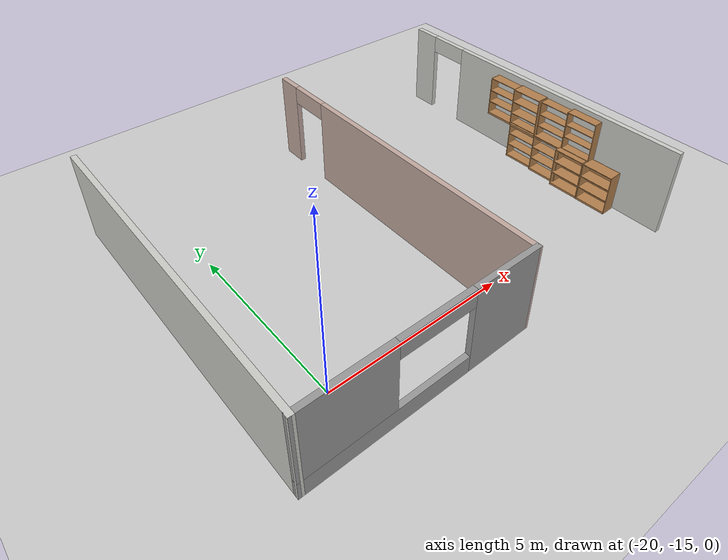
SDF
<sdf version="1.7">
 <world name="default">
  <model name="ground_plane">
   <static>1</static>
   <link name="link">
    <collision name="collision">
     <geometry><plane><normal>0 0 1</normal><size>100 100</size></plane></geometry>
     <surface><friction><ode><mu>100</mu><mu2>50</mu2></ode></friction></surface>
    </collision>
    <visual name="visual">
     <cast_shadows>0</cast_shadows>
     <geometry><plane><normal>0 0 1</normal><size>100 100</size></plane></geometry>
     <material>
      <script><uri>file://media/materials/scripts/gazebo.material</uri><name>Gazebo/Grey</name></script>
     </material>
    </visual>
   </link>
  </model>
  <model name="cps_lab_layout">
   <pose>-2.5615 -0.338224 0 0 -0 0</pose>
   <link name="Wall_85">
    <pose>-7.6062 -11.3801 0 0 -0 1.5708</pose>
    <visual name="Wall_85_Visual_0">
     <pose>-1.00212 0 1.25 0 -0 0</pose>
     <geometry><box><size>7.49576 0.15 2.5</size></box></geometry>
     <material>
      <script><uri>file://media/materials/scripts/gazebo.material</uri><name>Gazebo/CeilingTiled</name></script>
      <ambient>0.760784 0.662745 0.627451 1</ambient>
     </material>
     <meta><layer>0</layer></meta>
    </visual>
    <collision name="Wall_85_Collision_0">
     <geometry><box><size>7.49576 0.15 2.5</size></box></geometry>
     <pose>-1.00212 0 1.25 0 -0 0</pose>
    </collision>
    <visual name="Wall_85_Visual_1">
     <pose>4.34788 0 1.25 0 -0 0</pose>
     <geometry><box><size>0.804242 0.15 2.5</size></box></geometry>
     <material>
      <script><uri>file://media/materials/scripts/gazebo.material</uri><name>Gazebo/CeilingTiled</name></script>
      <ambient>0.760784 0.662745 0.627451 1</ambient>
     </material>
     <meta><layer>0</layer></meta>
    </visual>
    <collision name="Wall_85_Collision_1">
     <geometry><box><size>0.804242 0.15 2.5</size></box></geometry>
     <pose>4.34788 0 1.25 0 -0 0</pose>
    </collision>
    <visual name="Wall_85_Visual_2">
     <pose>3.34576 0 2.25 0 -0 0</pose>
     <geometry><box><size>1.2 0.15 0.5</size></box></geometry>
     <material>
      <script><uri>file://media/materials/scripts/gazebo.material</uri><name>Gazebo/CeilingTiled</name></script>
      <ambient>0.760784 0.662745 0.627451 1</ambient>
     </material>
     <meta><layer>0</layer></meta>
    </visual>
    <collision name="Wall_85_Collision_2">
     <geometry><box><size>1.2 0.15 0.5</size></box></geometry>
     <pose>3.34576 0 2.25 0 -0 0</pose>
    </collision>
   </link>
   <link name="Wall_87">
    <pose>-12.9562 -11.3801 0 0 -0 -1.5708</pose>
    <visual name="Wall_87_Visual_0">
     <pose>-4.40065 0 1.25 0 -0 0</pose>
     <geometry><box><size>0.698706 0.15 2.5</size></box></geometry>
     <material>
      <script><uri>file://media/materials/scripts/gazebo.material</uri><name>Gazebo/Grey</name></script>
      <ambient>0.760784 0.662745 0.627451 1</ambient>
     </material>
     <meta><layer>0</layer></meta>
    </visual>
    <collision name="Wall_87_Collision_0">
     <geometry><box><size>0.698706 0.15 2.5</size></box></geometry>
     <pose>-4.40065 0 1.25 0 -0 0</pose>
    </collision>
    <visual name="Wall_87_Visual_1">
     <pose>0.949353 0 1.25 0 -0 0</pose>
     <geometry><box><size>7.60129 0.15 2.5</size></box></geometry>
     <material>
      <script><uri>file://media/materials/scripts/gazebo.material</uri><name>Gazebo/Grey</name></script>
      <ambient>0.760784 0.662745 0.627451 1</ambient>
     </material>
     <meta><layer>0</layer></meta>
    </visual>
    <collision name="Wall_87_Collision_1">
     <geometry><box><size>7.60129 0.15 2.5</size></box></geometry>
     <pose>0.949353 0 1.25 0 -0 0</pose>
    </collision>
    <visual name="Wall_87_Visual_2">
     <pose>-3.45129 0 2.25 0 -0 0</pose>
     <geometry><box><size>1.2 0.15 0.5</size></box></geometry>
     <material>
      <script><uri>file://media/materials/scripts/gazebo.material</uri><name>Gazebo/Grey</name></script>
      <ambient>0.760784 0.662745 0.627451 1</ambient>
     </material>
     <meta><layer>0</layer></meta>
    </visual>
    <collision name="Wall_87_Collision_2">
     <geometry><box><size>1.2 0.15 0.5</size></box></geometry>
     <pose>-3.45129 0 2.25 0 -0 0</pose>
    </collision>
   </link>
   <link name="Wall_88">
    <pose>-16.0448 -16.0781 0 0 -0 -3.13416</pose>
    <visual name="Wall_88_Visual_0">
     <pose>-2.20299 0 1.25 0 -0 0</pose>
     <geometry><box><size>1.92131 0.15 2.5</size></box></geometry>
     <material>
      <script><uri>file://media/materials/scripts/gazebo.material</uri><name>Gazebo/Grey</name></script>
      <ambient>1 1 1 1</ambient>
     </material>
     <meta><layer>0</layer></meta>
    </visual>
    <collision name="Wall_88_Collision_0">
     <geometry><box><size>1.92131 0.15 2.5</size></box></geometry>
     <pose>-2.20299 0 1.25 0 -0 0</pose>
    </collision>
    <visual name="Wall_88_Visual_1">
     <pose>0.960656 0 0.25 0 -0 0</pose>
     <geometry><box><size>4.40597 0.15 0.5</size></box></geometry>
     <material>
      <script><uri>file://media/materials/scripts/gazebo.material</uri><name>Gazebo/Grey</name></script>
      <ambient>1 1 1 1</ambient>
     </material>
     <meta><layer>0</layer></meta>
    </visual>
    <collision name="Wall_88_Collision_1">
     <geometry><box><size>4.40597 0.15 0.5</size></box></geometry>
     <pose>0.960656 0 0.25 0 -0 0</pose>
    </collision>
    <visual name="Wall_88_Visual_2">
     <pose>1.96066 0 1.5 0 -0 0</pose>
     <geometry><box><size>2.40598 0.15 2</size></box></geometry>
     <material>
      <script><uri>file://media/materials/scripts/gazebo.material</uri><name>Gazebo/Grey</name></script>
      <ambient>1 1 1 1</ambient>
     </material>
     <meta><layer>0</layer></meta>
    </visual>
    <collision name="Wall_88_Collision_2">
     <geometry><box><size>2.40598 0.15 2</size></box></geometry>
     <pose>1.96066 0 1.5 0 -0 0</pose>
    </collision>
    <visual name="Wall_88_Visual_3">
     <pose>-0.242332 0 2.25 0 -0 0</pose>
     <geometry><box><size>2 0.15 0.5</size></box></geometry>
     <material>
      <script><uri>file://media/materials/scripts/gazebo.material</uri><name>Gazebo/Grey</name></script>
      <ambient>1 1 1 1</ambient>
     </material>
     <meta><layer>0</layer></meta>
    </visual>
    <collision name="Wall_88_Collision_3">
     <geometry><box><size>2 0.15 0.5</size></box></geometry>
     <pose>-0.242332 0 2.25 0 -0 0</pose>
    </collision>
   </link>
   <link name="Wall_89">
    <collision name="Wall_89_Collision">
     <geometry><box><size>9.5 0.15 2.5</size></box></geometry>
     <pose>0 0 1.25 0 -0 0</pose>
    </collision>
    <visual name="Wall_89_Visual">
     <pose>0 0 1.25 0 -0 0</pose>
     <geometry><box><size>9.5 0.15 2.5</size></box></geometry>
     <material>
      <script><uri>file://media/materials/scripts/gazebo.material</uri><name>Gazebo/CeilingTiled</name></script>
      <ambient>0.760784 0.662745 0.627451 1</ambient>
     </material>
     <meta><layer>0</layer></meta>
    </visual>
    <pose>-19.1333 -11.426 0 0 -0 1.5708</pose>
   </link>
   <static>1</static>
  </model>
  <model name="Bookshelf_0_clone_clone_1">
   <static>1</static>
   <link name="link">
    <inertial><mass>1</mass></inertial>
    <collision name="back">
     <pose>0 0.005 0.6 0 -0 0</pose>
     <geometry><box><size>0.9 0.01 1.2</size></box></geometry>
    </collision>
    <visual name="visual1">
     <pose>0 0.005 0.6 0 -0 0</pose>
     <geometry><box><size>0.9 0.01 1.2</size></box></geometry>
     <material>
      <diffuse>1 1 1 1</diffuse>
      <script><uri>file://media/materials/scripts/gazebo.material</uri><name>Gazebo/Wood</name></script>
      <pbr>
       <metal>
        <albedo_map>https://fuel.gazebosim.org/1.0/openrobotics/models/bookshelf/4/files/bookshelf_diffuse.jpg</albedo_map>
       </metal>
      </pbr>
     </material>
    </visual>
    <collision name="left_side">
     <pose>0.45 -0.195 0.6 0 -0 0</pose>
     <geometry><box><size>0.02 0.4 1.2</size></box></geometry>
    </collision>
    <visual name="visual2">
     <pose>0.45 -0.195 0.6 0 -0 0</pose>
     <geometry><box><size>0.02 0.4 1.2</size></box></geometry>
     <material>
      <diffuse>1 1 1 1</diffuse>
      <script><uri>file://media/materials/scripts/gazebo.material</uri><name>Gazebo/Wood</name></script>
      <pbr>
       <metal>
        <albedo_map>https://fuel.gazebosim.org/1.0/openrobotics/models/bookshelf/4/files/bookshelf_diffuse.jpg</albedo_map>
       </metal>
      </pbr>
     </material>
    </visual>
    <collision name="right_side">
     <pose>-0.45 -0.195 0.6 0 -0 0</pose>
     <geometry><box><size>0.02 0.4 1.2</size></box></geometry>
    </collision>
    <visual name="visual3">
     <pose>-0.45 -0.195 0.6 0 -0 0</pose>
     <geometry><box><size>0.02 0.4 1.2</size></box></geometry>
     <material>
      <diffuse>1 1 1 1</diffuse>
      <script><uri>file://media/materials/scripts/gazebo.material</uri><name>Gazebo/Wood</name></script>
      <pbr>
       <metal>
        <albedo_map>https://fuel.gazebosim.org/1.0/openrobotics/models/bookshelf/4/files/bookshelf_diffuse.jpg</albedo_map>
       </metal>
      </pbr>
     </material>
    </visual>
    <collision name="bottom">
     <pose>0 -0.195 0.03 0 -0 0</pose>
     <geometry><box><size>0.88 0.4 0.06</size></box></geometry>
    </collision>
    <visual name="visual4">
     <pose>0 -0.195 0.03 0 -0 0</pose>
     <geometry><box><size>0.88 0.4 0.06</size></box></geometry>
     <material>
      <diffuse>1 1 1 1</diffuse>
      <script><uri>file://media/materials/scripts/gazebo.material</uri><name>Gazebo/Wood</name></script>
      <pbr>
       <metal>
        <albedo_map>https://fuel.gazebosim.org/1.0/openrobotics/models/bookshelf/4/files/bookshelf_diffuse.jpg</albedo_map>
       </metal>
      </pbr>
     </material>
    </visual>
    <collision name="top">
     <pose>0 -0.195 1.19 0 -0 0</pose>
     <geometry><box><size>0.88 0.4 0.02</size></box></geometry>
    </collision>
    <visual name="visual5">
     <pose>0 -0.195 1.19 0 -0 0</pose>
     <geometry><box><size>0.88 0.4 0.02</size></box></geometry>
     <material>
      <diffuse>1 1 1 1</diffuse>
      <script><uri>file://media/materials/scripts/gazebo.material</uri><name>Gazebo/Wood</name></script>
      <pbr>
       <metal>
        <albedo_map>https://fuel.gazebosim.org/1.0/openrobotics/models/bookshelf/4/files/bookshelf_diffuse.jpg</albedo_map>
       </metal>
      </pbr>
     </material>
    </visual>
    <collision name="low_shelf">
     <pose>0 -0.195 0.43 0 -0 0</pose>
     <geometry><box><size>0.88 0.4 0.02</size></box></geometry>
    </collision>
    <visual name="visual6">
     <pose>0 -0.195 0.43 0 -0 0</pose>
     <geometry><box><size>0.88 0.4 0.02</size></box></geometry>
     <material>
      <diffuse>1 1 1 1</diffuse>
      <script><uri>file://media/materials/scripts/gazebo.material</uri><name>Gazebo/Wood</name></script>
      <pbr>
       <metal>
        <albedo_map>https://fuel.gazebosim.org/1.0/openrobotics/models/bookshelf/4/files/bookshelf_diffuse.jpg</albedo_map>
       </metal>
      </pbr>
     </material>
    </visual>
    <collision name="high_shelf">
     <pose>0 -0.195 0.8 0 -0 0</pose>
     <geometry><box><size>0.88 0.4 0.02</size></box></geometry>
    </collision>
    <visual name="visual7">
     <pose>0 -0.195 0.8 0 -0 0</pose>
     <geometry><box><size>0.88 0.4 0.02</size></box></geometry>
     <material>
      <diffuse>1 1 1 1</diffuse>
      <script><uri>file://media/materials/scripts/gazebo.material</uri><name>Gazebo/Wood</name></script>
      <pbr>
       <metal>
        <albedo_map>https://fuel.gazebosim.org/1.0/openrobotics/models/bookshelf/4/files/bookshelf_diffuse.jpg</albedo_map>
       </metal>
      </pbr>
     </material>
    </visual>
   </link>
   <pose>-10.1688 -11.9134 0 0 0 -1.55424</pose>
  </model>
  <model name="Bookshelf_0_clone_clone_2">
   <static>1</static>
   <link name="link">
    <inertial><mass>1</mass></inertial>
    <collision name="back">
     <pose>0 0.005 0.6 0 -0 0</pose>
     <geometry><box><size>0.9 0.01 1.2</size></box></geometry>
    </collision>
    <visual name="visual1">
     <pose>0 0.005 0.6 0 -0 0</pose>
     <geometry><box><size>0.9 0.01 1.2</size></box></geometry>
     <material>
      <diffuse>1 1 1 1</diffuse>
      <script><uri>file://media/materials/scripts/gazebo.material</uri><name>Gazebo/Wood</name></script>
      <pbr>
       <metal>
        <albedo_map>https://fuel.gazebosim.org/1.0/openrobotics/models/bookshelf/4/files/bookshelf_diffuse.jpg</albedo_map>
       </metal>
      </pbr>
     </material>
    </visual>
    <collision name="left_side">
     <pose>0.45 -0.195 0.6 0 -0 0</pose>
     <geometry><box><size>0.02 0.4 1.2</size></box></geometry>
    </collision>
    <visual name="visual2">
     <pose>0.45 -0.195 0.6 0 -0 0</pose>
     <geometry><box><size>0.02 0.4 1.2</size></box></geometry>
     <material>
      <diffuse>1 1 1 1</diffuse>
      <script><uri>file://media/materials/scripts/gazebo.material</uri><name>Gazebo/Wood</name></script>
      <pbr>
       <metal>
        <albedo_map>https://fuel.gazebosim.org/1.0/openrobotics/models/bookshelf/4/files/bookshelf_diffuse.jpg</albedo_map>
       </metal>
      </pbr>
     </material>
    </visual>
    <collision name="right_side">
     <pose>-0.45 -0.195 0.6 0 -0 0</pose>
     <geometry><box><size>0.02 0.4 1.2</size></box></geometry>
    </collision>
    <visual name="visual3">
     <pose>-0.45 -0.195 0.6 0 -0 0</pose>
     <geometry><box><size>0.02 0.4 1.2</size></box></geometry>
     <material>
      <diffuse>1 1 1 1</diffuse>
      <script><uri>file://media/materials/scripts/gazebo.material</uri><name>Gazebo/Wood</name></script>
      <pbr>
       <metal>
        <albedo_map>https://fuel.gazebosim.org/1.0/openrobotics/models/bookshelf/4/files/bookshelf_diffuse.jpg</albedo_map>
       </metal>
      </pbr>
     </material>
    </visual>
    <collision name="bottom">
     <pose>0 -0.195 0.03 0 -0 0</pose>
     <geometry><box><size>0.88 0.4 0.06</size></box></geometry>
    </collision>
    <visual name="visual4">
     <pose>0 -0.195 0.03 0 -0 0</pose>
     <geometry><box><size>0.88 0.4 0.06</size></box></geometry>
     <material>
      <diffuse>1 1 1 1</diffuse>
      <script><uri>file://media/materials/scripts/gazebo.material</uri><name>Gazebo/Wood</name></script>
      <pbr>
       <metal>
        <albedo_map>https://fuel.gazebosim.org/1.0/openrobotics/models/bookshelf/4/files/bookshelf_diffuse.jpg</albedo_map>
       </metal>
      </pbr>
     </material>
    </visual>
    <collision name="top">
     <pose>0 -0.195 1.19 0 -0 0</pose>
     <geometry><box><size>0.88 0.4 0.02</size></box></geometry>
    </collision>
    <visual name="visual5">
     <pose>0 -0.195 1.19 0 -0 0</pose>
     <geometry><box><size>0.88 0.4 0.02</size></box></geometry>
     <material>
      <diffuse>1 1 1 1</diffuse>
      <script><uri>file://media/materials/scripts/gazebo.material</uri><name>Gazebo/Wood</name></script>
      <pbr>
       <metal>
        <albedo_map>https://fuel.gazebosim.org/1.0/openrobotics/models/bookshelf/4/files/bookshelf_diffuse.jpg</albedo_map>
       </metal>
      </pbr>
     </material>
    </visual>
    <collision name="low_shelf">
     <pose>0 -0.195 0.43 0 -0 0</pose>
     <geometry><box><size>0.88 0.4 0.02</size></box></geometry>
    </collision>
    <visual name="visual6">
     <pose>0 -0.195 0.43 0 -0 0</pose>
     <geometry><box><size>0.88 0.4 0.02</size></box></geometry>
     <material>
      <diffuse>1 1 1 1</diffuse>
      <script><uri>file://media/materials/scripts/gazebo.material</uri><name>Gazebo/Wood</name></script>
      <pbr>
       <metal>
        <albedo_map>https://fuel.gazebosim.org/1.0/openrobotics/models/bookshelf/4/files/bookshelf_diffuse.jpg</albedo_map>
       </metal>
      </pbr>
     </material>
    </visual>
    <collision name="high_shelf">
     <pose>0 -0.195 0.8 0 -0 0</pose>
     <geometry><box><size>0.88 0.4 0.02</size></box></geometry>
    </collision>
    <visual name="visual7">
     <pose>0 -0.195 0.8 0 -0 0</pose>
     <geometry><box><size>0.88 0.4 0.02</size></box></geometry>
     <material>
      <diffuse>1 1 1 1</diffuse>
      <script><uri>file://media/materials/scripts/gazebo.material</uri><name>Gazebo/Wood</name></script>
      <pbr>
       <metal>
        <albedo_map>https://fuel.gazebosim.org/1.0/openrobotics/models/bookshelf/4/files/bookshelf_diffuse.jpg</albedo_map>
       </metal>
      </pbr>
     </material>
    </visual>
   </link>
   <pose>-10.2119 -12.8498 0 0 0 -1.55424</pose>
  </model>
  <model name="Bookshelf_0_clone_clone_3">
   <static>1</static>
   <link name="link">
    <inertial><mass>1</mass></inertial>
    <collision name="back">
     <pose>0 0.005 0.6 0 -0 0</pose>
     <geometry><box><size>0.9 0.01 1.2</size></box></geometry>
    </collision>
    <visual name="visual1">
     <pose>0 0.005 0.6 0 -0 0</pose>
     <geometry><box><size>0.9 0.01 1.2</size></box></geometry>
     <material>
      <diffuse>1 1 1 1</diffuse>
      <script><uri>file://media/materials/scripts/gazebo.material</uri><name>Gazebo/Wood</name></script>
      <pbr>
       <metal>
        <albedo_map>https://fuel.gazebosim.org/1.0/openrobotics/models/bookshelf/4/files/bookshelf_diffuse.jpg</albedo_map>
       </metal>
      </pbr>
     </material>
    </visual>
    <collision name="left_side">
     <pose>0.45 -0.195 0.6 0 -0 0</pose>
     <geometry><box><size>0.02 0.4 1.2</size></box></geometry>
    </collision>
    <visual name="visual2">
     <pose>0.45 -0.195 0.6 0 -0 0</pose>
     <geometry><box><size>0.02 0.4 1.2</size></box></geometry>
     <material>
      <diffuse>1 1 1 1</diffuse>
      <script><uri>file://media/materials/scripts/gazebo.material</uri><name>Gazebo/Wood</name></script>
      <pbr>
       <metal>
        <albedo_map>https://fuel.gazebosim.org/1.0/openrobotics/models/bookshelf/4/files/bookshelf_diffuse.jpg</albedo_map>
       </metal>
      </pbr>
     </material>
    </visual>
    <collision name="right_side">
     <pose>-0.45 -0.195 0.6 0 -0 0</pose>
     <geometry><box><size>0.02 0.4 1.2</size></box></geometry>
    </collision>
    <visual name="visual3">
     <pose>-0.45 -0.195 0.6 0 -0 0</pose>
     <geometry><box><size>0.02 0.4 1.2</size></box></geometry>
     <material>
      <diffuse>1 1 1 1</diffuse>
      <script><uri>file://media/materials/scripts/gazebo.material</uri><name>Gazebo/Wood</name></script>
      <pbr>
       <metal>
        <albedo_map>https://fuel.gazebosim.org/1.0/openrobotics/models/bookshelf/4/files/bookshelf_diffuse.jpg</albedo_map>
       </metal>
      </pbr>
     </material>
    </visual>
    <collision name="bottom">
     <pose>0 -0.195 0.03 0 -0 0</pose>
     <geometry><box><size>0.88 0.4 0.06</size></box></geometry>
    </collision>
    <visual name="visual4">
     <pose>0 -0.195 0.03 0 -0 0</pose>
     <geometry><box><size>0.88 0.4 0.06</size></box></geometry>
     <material>
      <diffuse>1 1 1 1</diffuse>
      <script><uri>file://media/materials/scripts/gazebo.material</uri><name>Gazebo/Wood</name></script>
      <pbr>
       <metal>
        <albedo_map>https://fuel.gazebosim.org/1.0/openrobotics/models/bookshelf/4/files/bookshelf_diffuse.jpg</albedo_map>
       </metal>
      </pbr>
     </material>
    </visual>
    <collision name="top">
     <pose>0 -0.195 1.19 0 -0 0</pose>
     <geometry><box><size>0.88 0.4 0.02</size></box></geometry>
    </collision>
    <visual name="visual5">
     <pose>0 -0.195 1.19 0 -0 0</pose>
     <geometry><box><size>0.88 0.4 0.02</size></box></geometry>
     <material>
      <diffuse>1 1 1 1</diffuse>
      <script><uri>file://media/materials/scripts/gazebo.material</uri><name>Gazebo/Wood</name></script>
      <pbr>
       <metal>
        <albedo_map>https://fuel.gazebosim.org/1.0/openrobotics/models/bookshelf/4/files/bookshelf_diffuse.jpg</albedo_map>
       </metal>
      </pbr>
     </material>
    </visual>
    <collision name="low_shelf">
     <pose>0 -0.195 0.43 0 -0 0</pose>
     <geometry><box><size>0.88 0.4 0.02</size></box></geometry>
    </collision>
    <visual name="visual6">
     <pose>0 -0.195 0.43 0 -0 0</pose>
     <geometry><box><size>0.88 0.4 0.02</size></box></geometry>
     <material>
      <diffuse>1 1 1 1</diffuse>
      <script><uri>file://media/materials/scripts/gazebo.material</uri><name>Gazebo/Wood</name></script>
      <pbr>
       <metal>
        <albedo_map>https://fuel.gazebosim.org/1.0/openrobotics/models/bookshelf/4/files/bookshelf_diffuse.jpg</albedo_map>
       </metal>
      </pbr>
     </material>
    </visual>
    <collision name="high_shelf">
     <pose>0 -0.195 0.8 0 -0 0</pose>
     <geometry><box><size>0.88 0.4 0.02</size></box></geometry>
    </collision>
    <visual name="visual7">
     <pose>0 -0.195 0.8 0 -0 0</pose>
     <geometry><box><size>0.88 0.4 0.02</size></box></geometry>
     <material>
      <diffuse>1 1 1 1</diffuse>
      <script><uri>file://media/materials/scripts/gazebo.material</uri><name>Gazebo/Wood</name></script>
      <pbr>
       <metal>
        <albedo_map>https://fuel.gazebosim.org/1.0/openrobotics/models/bookshelf/4/files/bookshelf_diffuse.jpg</albedo_map>
       </metal>
      </pbr>
     </material>
    </visual>
   </link>
   <pose>-10.3157 -13.7231 0 0 0 -1.55424</pose>
  </model>
  <model name="Bookshelf_0_clone_clone_4">
   <static>1</static>
   <link name="link">
    <inertial><mass>1</mass></inertial>
    <collision name="back">
     <pose>0 0.005 0.6 0 -0 0</pose>
     <geometry><box><size>0.9 0.01 1.2</size></box></geometry>
    </collision>
    <visual name="visual1">
     <pose>0 0.005 0.6 0 -0 0</pose>
     <geometry><box><size>0.9 0.01 1.2</size></box></geometry>
     <material>
      <diffuse>1 1 1 1</diffuse>
      <script><uri>file://media/materials/scripts/gazebo.material</uri><name>Gazebo/Wood</name></script>
      <pbr>
       <metal>
        <albedo_map>https://fuel.gazebosim.org/1.0/openrobotics/models/bookshelf/4/files/bookshelf_diffuse.jpg</albedo_map>
       </metal>
      </pbr>
     </material>
    </visual>
    <collision name="left_side">
     <pose>0.45 -0.195 0.6 0 -0 0</pose>
     <geometry><box><size>0.02 0.4 1.2</size></box></geometry>
    </collision>
    <visual name="visual2">
     <pose>0.45 -0.195 0.6 0 -0 0</pose>
     <geometry><box><size>0.02 0.4 1.2</size></box></geometry>
     <material>
      <diffuse>1 1 1 1</diffuse>
      <script><uri>file://media/materials/scripts/gazebo.material</uri><name>Gazebo/Wood</name></script>
      <pbr>
       <metal>
        <albedo_map>https://fuel.gazebosim.org/1.0/openrobotics/models/bookshelf/4/files/bookshelf_diffuse.jpg</albedo_map>
       </metal>
      </pbr>
     </material>
    </visual>
    <collision name="right_side">
     <pose>-0.45 -0.195 0.6 0 -0 0</pose>
     <geometry><box><size>0.02 0.4 1.2</size></box></geometry>
    </collision>
    <visual name="visual3">
     <pose>-0.45 -0.195 0.6 0 -0 0</pose>
     <geometry><box><size>0.02 0.4 1.2</size></box></geometry>
     <material>
      <diffuse>1 1 1 1</diffuse>
      <script><uri>file://media/materials/scripts/gazebo.material</uri><name>Gazebo/Wood</name></script>
      <pbr>
       <metal>
        <albedo_map>https://fuel.gazebosim.org/1.0/openrobotics/models/bookshelf/4/files/bookshelf_diffuse.jpg</albedo_map>
       </metal>
      </pbr>
     </material>
    </visual>
    <collision name="bottom">
     <pose>0 -0.195 0.03 0 -0 0</pose>
     <geometry><box><size>0.88 0.4 0.06</size></box></geometry>
    </collision>
    <visual name="visual4">
     <pose>0 -0.195 0.03 0 -0 0</pose>
     <geometry><box><size>0.88 0.4 0.06</size></box></geometry>
     <material>
      <diffuse>1 1 1 1</diffuse>
      <script><uri>file://media/materials/scripts/gazebo.material</uri><name>Gazebo/Wood</name></script>
      <pbr>
       <metal>
        <albedo_map>https://fuel.gazebosim.org/1.0/openrobotics/models/bookshelf/4/files/bookshelf_diffuse.jpg</albedo_map>
       </metal>
      </pbr>
     </material>
    </visual>
    <collision name="top">
     <pose>0 -0.195 1.19 0 -0 0</pose>
     <geometry><box><size>0.88 0.4 0.02</size></box></geometry>
    </collision>
    <visual name="visual5">
     <pose>0 -0.195 1.19 0 -0 0</pose>
     <geometry><box><size>0.88 0.4 0.02</size></box></geometry>
     <material>
      <diffuse>1 1 1 1</diffuse>
      <script><uri>file://media/materials/scripts/gazebo.material</uri><name>Gazebo/Wood</name></script>
      <pbr>
       <metal>
        <albedo_map>https://fuel.gazebosim.org/1.0/openrobotics/models/bookshelf/4/files/bookshelf_diffuse.jpg</albedo_map>
       </metal>
      </pbr>
     </material>
    </visual>
    <collision name="low_shelf">
     <pose>0 -0.195 0.43 0 -0 0</pose>
     <geometry><box><size>0.88 0.4 0.02</size></box></geometry>
    </collision>
    <visual name="visual6">
     <pose>0 -0.195 0.43 0 -0 0</pose>
     <geometry><box><size>0.88 0.4 0.02</size></box></geometry>
     <material>
      <diffuse>1 1 1 1</diffuse>
      <script><uri>file://media/materials/scripts/gazebo.material</uri><name>Gazebo/Wood</name></script>
      <pbr>
       <metal>
        <albedo_map>https://fuel.gazebosim.org/1.0/openrobotics/models/bookshelf/4/files/bookshelf_diffuse.jpg</albedo_map>
       </metal>
      </pbr>
     </material>
    </visual>
    <collision name="high_shelf">
     <pose>0 -0.195 0.8 0 -0 0</pose>
     <geometry><box><size>0.88 0.4 0.02</size></box></geometry>
    </collision>
    <visual name="visual7">
     <pose>0 -0.195 0.8 0 -0 0</pose>
     <geometry><box><size>0.88 0.4 0.02</size></box></geometry>
     <material>
      <diffuse>1 1 1 1</diffuse>
      <script><uri>file://media/materials/scripts/gazebo.material</uri><name>Gazebo/Wood</name></script>
      <pbr>
       <metal>
        <albedo_map>https://fuel.gazebosim.org/1.0/openrobotics/models/bookshelf/4/files/bookshelf_diffuse.jpg</albedo_map>
       </metal>
      </pbr>
     </material>
    </visual>
   </link>
   <pose>-10.309 -14.6525 0 0 0 -1.55424</pose>
  </model>
  <model name="Bookshelf_0_clone_clone_4_clone_clone">
   <static>1</static>
   <link name="link">
    <inertial><mass>1</mass></inertial>
    <collision name="back">
     <pose>0 0.005 0.6 0 -0 0</pose>
     <geometry><box><size>0.9 0.01 1.2</size></box></geometry>
    </collision>
    <visual name="visual1">
     <pose>0 0.005 0.6 0 -0 0</pose>
     <geometry><box><size>0.9 0.01 1.2</size></box></geometry>
     <material>
      <diffuse>1 1 1 1</diffuse>
      <script><uri>file://media/materials/scripts/gazebo.material</uri><name>Gazebo/Wood</name></script>
      <pbr>
       <metal>
        <albedo_map>https://fuel.gazebosim.org/1.0/openrobotics/models/bookshelf/4/files/bookshelf_diffuse.jpg</albedo_map>
       </metal>
      </pbr>
     </material>
    </visual>
    <collision name="left_side">
     <pose>0.45 -0.195 0.6 0 -0 0</pose>
     <geometry><box><size>0.02 0.4 1.2</size></box></geometry>
    </collision>
    <visual name="visual2">
     <pose>0.45 -0.195 0.6 0 -0 0</pose>
     <geometry><box><size>0.02 0.4 1.2</size></box></geometry>
     <material>
      <diffuse>1 1 1 1</diffuse>
      <script><uri>file://media/materials/scripts/gazebo.material</uri><name>Gazebo/Wood</name></script>
      <pbr>
       <metal>
        <albedo_map>https://fuel.gazebosim.org/1.0/openrobotics/models/bookshelf/4/files/bookshelf_diffuse.jpg</albedo_map>
       </metal>
      </pbr>
     </material>
    </visual>
    <collision name="right_side">
     <pose>-0.45 -0.195 0.6 0 -0 0</pose>
     <geometry><box><size>0.02 0.4 1.2</size></box></geometry>
    </collision>
    <visual name="visual3">
     <pose>-0.45 -0.195 0.6 0 -0 0</pose>
     <geometry><box><size>0.02 0.4 1.2</size></box></geometry>
     <material>
      <diffuse>1 1 1 1</diffuse>
      <script><uri>file://media/materials/scripts/gazebo.material</uri><name>Gazebo/Wood</name></script>
      <pbr>
       <metal>
        <albedo_map>https://fuel.gazebosim.org/1.0/openrobotics/models/bookshelf/4/files/bookshelf_diffuse.jpg</albedo_map>
       </metal>
      </pbr>
     </material>
    </visual>
    <collision name="bottom">
     <pose>0 -0.195 0.03 0 -0 0</pose>
     <geometry><box><size>0.88 0.4 0.06</size></box></geometry>
    </collision>
    <visual name="visual4">
     <pose>0 -0.195 0.03 0 -0 0</pose>
     <geometry><box><size>0.88 0.4 0.06</size></box></geometry>
     <material>
      <diffuse>1 1 1 1</diffuse>
      <script><uri>file://media/materials/scripts/gazebo.material</uri><name>Gazebo/Wood</name></script>
      <pbr>
       <metal>
        <albedo_map>https://fuel.gazebosim.org/1.0/openrobotics/models/bookshelf/4/files/bookshelf_diffuse.jpg</albedo_map>
       </metal>
      </pbr>
     </material>
    </visual>
    <collision name="top">
     <pose>0 -0.195 1.19 0 -0 0</pose>
     <geometry><box><size>0.88 0.4 0.02</size></box></geometry>
    </collision>
    <visual name="visual5">
     <pose>0 -0.195 1.19 0 -0 0</pose>
     <geometry><box><size>0.88 0.4 0.02</size></box></geometry>
     <material>
      <diffuse>1 1 1 1</diffuse>
      <script><uri>file://media/materials/scripts/gazebo.material</uri><name>Gazebo/Wood</name></script>
      <pbr>
       <metal>
        <albedo_map>https://fuel.gazebosim.org/1.0/openrobotics/models/bookshelf/4/files/bookshelf_diffuse.jpg</albedo_map>
       </metal>
      </pbr>
     </material>
    </visual>
    <collision name="low_shelf">
     <pose>0 -0.195 0.43 0 -0 0</pose>
     <geometry><box><size>0.88 0.4 0.02</size></box></geometry>
    </collision>
    <visual name="visual6">
     <pose>0 -0.195 0.43 0 -0 0</pose>
     <geometry><box><size>0.88 0.4 0.02</size></box></geometry>
     <material>
      <diffuse>1 1 1 1</diffuse>
      <script><uri>file://media/materials/scripts/gazebo.material</uri><name>Gazebo/Wood</name></script>
      <pbr>
       <metal>
        <albedo_map>https://fuel.gazebosim.org/1.0/openrobotics/models/bookshelf/4/files/bookshelf_diffuse.jpg</albedo_map>
       </metal>
      </pbr>
     </material>
    </visual>
    <collision name="high_shelf">
     <pose>0 -0.195 0.8 0 -0 0</pose>
     <geometry><box><size>0.88 0.4 0.02</size></box></geometry>
    </collision>
    <visual name="visual7">
     <pose>0 -0.195 0.8 0 -0 0</pose>
     <geometry><box><size>0.88 0.4 0.02</size></box></geometry>
     <material>
      <diffuse>1 1 1 1</diffuse>
      <script><uri>file://media/materials/scripts/gazebo.material</uri><name>Gazebo/Wood</name></script>
      <pbr>
       <metal>
        <albedo_map>https://fuel.gazebosim.org/1.0/openrobotics/models/bookshelf/4/files/bookshelf_diffuse.jpg</albedo_map>
       </metal>
      </pbr>
     </material>
    </visual>
   </link>
   <pose>-10.1319 -13.7574 1.15581 0 0 -1.55424</pose>
  </model>
  <model name="Bookshelf_0_clone_clone_4_clone_clone_0">
   <static>1</static>
   <link name="link">
    <inertial><mass>1</mass></inertial>
    <collision name="back">
     <pose>0 0.005 0.6 0 -0 0</pose>
     <geometry><box><size>0.9 0.01 1.2</size></box></geometry>
    </collision>
    <visual name="visual1">
     <pose>0 0.005 0.6 0 -0 0</pose>
     <geometry><box><size>0.9 0.01 1.2</size></box></geometry>
     <material>
      <diffuse>1 1 1 1</diffuse>
      <script><uri>file://media/materials/scripts/gazebo.material</uri><name>Gazebo/Wood</name></script>
      <pbr>
       <metal>
        <albedo_map>https://fuel.gazebosim.org/1.0/openrobotics/models/bookshelf/4/files/bookshelf_diffuse.jpg</albedo_map>
       </metal>
      </pbr>
     </material>
    </visual>
    <collision name="left_side">
     <pose>0.45 -0.195 0.6 0 -0 0</pose>
     <geometry><box><size>0.02 0.4 1.2</size></box></geometry>
    </collision>
    <visual name="visual2">
     <pose>0.45 -0.195 0.6 0 -0 0</pose>
     <geometry><box><size>0.02 0.4 1.2</size></box></geometry>
     <material>
      <diffuse>1 1 1 1</diffuse>
      <script><uri>file://media/materials/scripts/gazebo.material</uri><name>Gazebo/Wood</name></script>
      <pbr>
       <metal>
        <albedo_map>https://fuel.gazebosim.org/1.0/openrobotics/models/bookshelf/4/files/bookshelf_diffuse.jpg</albedo_map>
       </metal>
      </pbr>
     </material>
    </visual>
    <collision name="right_side">
     <pose>-0.45 -0.195 0.6 0 -0 0</pose>
     <geometry><box><size>0.02 0.4 1.2</size></box></geometry>
    </collision>
    <visual name="visual3">
     <pose>-0.45 -0.195 0.6 0 -0 0</pose>
     <geometry><box><size>0.02 0.4 1.2</size></box></geometry>
     <material>
      <diffuse>1 1 1 1</diffuse>
      <script><uri>file://media/materials/scripts/gazebo.material</uri><name>Gazebo/Wood</name></script>
      <pbr>
       <metal>
        <albedo_map>https://fuel.gazebosim.org/1.0/openrobotics/models/bookshelf/4/files/bookshelf_diffuse.jpg</albedo_map>
       </metal>
      </pbr>
     </material>
    </visual>
    <collision name="bottom">
     <pose>0 -0.195 0.03 0 -0 0</pose>
     <geometry><box><size>0.88 0.4 0.06</size></box></geometry>
    </collision>
    <visual name="visual4">
     <pose>0 -0.195 0.03 0 -0 0</pose>
     <geometry><box><size>0.88 0.4 0.06</size></box></geometry>
     <material>
      <diffuse>1 1 1 1</diffuse>
      <script><uri>file://media/materials/scripts/gazebo.material</uri><name>Gazebo/Wood</name></script>
      <pbr>
       <metal>
        <albedo_map>https://fuel.gazebosim.org/1.0/openrobotics/models/bookshelf/4/files/bookshelf_diffuse.jpg</albedo_map>
       </metal>
      </pbr>
     </material>
    </visual>
    <collision name="top">
     <pose>0 -0.195 1.19 0 -0 0</pose>
     <geometry><box><size>0.88 0.4 0.02</size></box></geometry>
    </collision>
    <visual name="visual5">
     <pose>0 -0.195 1.19 0 -0 0</pose>
     <geometry><box><size>0.88 0.4 0.02</size></box></geometry>
     <material>
      <diffuse>1 1 1 1</diffuse>
      <script><uri>file://media/materials/scripts/gazebo.material</uri><name>Gazebo/Wood</name></script>
      <pbr>
       <metal>
        <albedo_map>https://fuel.gazebosim.org/1.0/openrobotics/models/bookshelf/4/files/bookshelf_diffuse.jpg</albedo_map>
       </metal>
      </pbr>
     </material>
    </visual>
    <collision name="low_shelf">
     <pose>0 -0.195 0.43 0 -0 0</pose>
     <geometry><box><size>0.88 0.4 0.02</size></box></geometry>
    </collision>
    <visual name="visual6">
     <pose>0 -0.195 0.43 0 -0 0</pose>
     <geometry><box><size>0.88 0.4 0.02</size></box></geometry>
     <material>
      <diffuse>1 1 1 1</diffuse>
      <script><uri>file://media/materials/scripts/gazebo.material</uri><name>Gazebo/Wood</name></script>
      <pbr>
       <metal>
        <albedo_map>https://fuel.gazebosim.org/1.0/openrobotics/models/bookshelf/4/files/bookshelf_diffuse.jpg</albedo_map>
       </metal>
      </pbr>
     </material>
    </visual>
    <collision name="high_shelf">
     <pose>0 -0.195 0.8 0 -0 0</pose>
     <geometry><box><size>0.88 0.4 0.02</size></box></geometry>
    </collision>
    <visual name="visual7">
     <pose>0 -0.195 0.8 0 -0 0</pose>
     <geometry><box><size>0.88 0.4 0.02</size></box></geometry>
     <material>
      <diffuse>1 1 1 1</diffuse>
      <script><uri>file://media/materials/scripts/gazebo.material</uri><name>Gazebo/Wood</name></script>
      <pbr>
       <metal>
        <albedo_map>https://fuel.gazebosim.org/1.0/openrobotics/models/bookshelf/4/files/bookshelf_diffuse.jpg</albedo_map>
       </metal>
      </pbr>
     </material>
    </visual>
   </link>
   <pose>-10.1451 -12.8648 1.08709 0 0 -1.55424</pose>
  </model>
  <model name="Bookshelf_0_clone_clone_4_clone_clone_1">
   <static>1</static>
   <link name="link">
    <inertial><mass>1</mass></inertial>
    <collision name="back">
     <pose>0 0.005 0.6 0 -0 0</pose>
     <geometry><box><size>0.9 0.01 1.2</size></box></geometry>
    </collision>
    <visual name="visual1">
     <pose>0 0.005 0.6 0 -0 0</pose>
     <geometry><box><size>0.9 0.01 1.2</size></box></geometry>
     <material>
      <diffuse>1 1 1 1</diffuse>
      <script><uri>file://media/materials/scripts/gazebo.material</uri><name>Gazebo/Wood</name></script>
      <pbr>
       <metal>
        <albedo_map>https://fuel.gazebosim.org/1.0/openrobotics/models/bookshelf/4/files/bookshelf_diffuse.jpg</albedo_map>
       </metal>
      </pbr>
     </material>
    </visual>
    <collision name="left_side">
     <pose>0.45 -0.195 0.6 0 -0 0</pose>
     <geometry><box><size>0.02 0.4 1.2</size></box></geometry>
    </collision>
    <visual name="visual2">
     <pose>0.45 -0.195 0.6 0 -0 0</pose>
     <geometry><box><size>0.02 0.4 1.2</size></box></geometry>
     <material>
      <diffuse>1 1 1 1</diffuse>
      <script><uri>file://media/materials/scripts/gazebo.material</uri><name>Gazebo/Wood</name></script>
      <pbr>
       <metal>
        <albedo_map>https://fuel.gazebosim.org/1.0/openrobotics/models/bookshelf/4/files/bookshelf_diffuse.jpg</albedo_map>
       </metal>
      </pbr>
     </material>
    </visual>
    <collision name="right_side">
     <pose>-0.45 -0.195 0.6 0 -0 0</pose>
     <geometry><box><size>0.02 0.4 1.2</size></box></geometry>
    </collision>
    <visual name="visual3">
     <pose>-0.45 -0.195 0.6 0 -0 0</pose>
     <geometry><box><size>0.02 0.4 1.2</size></box></geometry>
     <material>
      <diffuse>1 1 1 1</diffuse>
      <script><uri>file://media/materials/scripts/gazebo.material</uri><name>Gazebo/Wood</name></script>
      <pbr>
       <metal>
        <albedo_map>https://fuel.gazebosim.org/1.0/openrobotics/models/bookshelf/4/files/bookshelf_diffuse.jpg</albedo_map>
       </metal>
      </pbr>
     </material>
    </visual>
    <collision name="bottom">
     <pose>0 -0.195 0.03 0 -0 0</pose>
     <geometry><box><size>0.88 0.4 0.06</size></box></geometry>
    </collision>
    <visual name="visual4">
     <pose>0 -0.195 0.03 0 -0 0</pose>
     <geometry><box><size>0.88 0.4 0.06</size></box></geometry>
     <material>
      <diffuse>1 1 1 1</diffuse>
      <script><uri>file://media/materials/scripts/gazebo.material</uri><name>Gazebo/Wood</name></script>
      <pbr>
       <metal>
        <albedo_map>https://fuel.gazebosim.org/1.0/openrobotics/models/bookshelf/4/files/bookshelf_diffuse.jpg</albedo_map>
       </metal>
      </pbr>
     </material>
    </visual>
    <collision name="top">
     <pose>0 -0.195 1.19 0 -0 0</pose>
     <geometry><box><size>0.88 0.4 0.02</size></box></geometry>
    </collision>
    <visual name="visual5">
     <pose>0 -0.195 1.19 0 -0 0</pose>
     <geometry><box><size>0.88 0.4 0.02</size></box></geometry>
     <material>
      <diffuse>1 1 1 1</diffuse>
      <script><uri>file://media/materials/scripts/gazebo.material</uri><name>Gazebo/Wood</name></script>
      <pbr>
       <metal>
        <albedo_map>https://fuel.gazebosim.org/1.0/openrobotics/models/bookshelf/4/files/bookshelf_diffuse.jpg</albedo_map>
       </metal>
      </pbr>
     </material>
    </visual>
    <collision name="low_shelf">
     <pose>0 -0.195 0.43 0 -0 0</pose>
     <geometry><box><size>0.88 0.4 0.02</size></box></geometry>
    </collision>
    <visual name="visual6">
     <pose>0 -0.195 0.43 0 -0 0</pose>
     <geometry><box><size>0.88 0.4 0.02</size></box></geometry>
     <material>
      <diffuse>1 1 1 1</diffuse>
      <script><uri>file://media/materials/scripts/gazebo.material</uri><name>Gazebo/Wood</name></script>
      <pbr>
       <metal>
        <albedo_map>https://fuel.gazebosim.org/1.0/openrobotics/models/bookshelf/4/files/bookshelf_diffuse.jpg</albedo_map>
       </metal>
      </pbr>
     </material>
    </visual>
    <collision name="high_shelf">
     <pose>0 -0.195 0.8 0 -0 0</pose>
     <geometry><box><size>0.88 0.4 0.02</size></box></geometry>
    </collision>
    <visual name="visual7">
     <pose>0 -0.195 0.8 0 -0 0</pose>
     <geometry><box><size>0.88 0.4 0.02</size></box></geometry>
     <material>
      <diffuse>1 1 1 1</diffuse>
      <script><uri>file://media/materials/scripts/gazebo.material</uri><name>Gazebo/Wood</name></script>
      <pbr>
       <metal>
        <albedo_map>https://fuel.gazebosim.org/1.0/openrobotics/models/bookshelf/4/files/bookshelf_diffuse.jpg</albedo_map>
       </metal>
      </pbr>
     </material>
    </visual>
   </link>
   <pose>-10.2163 -11.9254 1.10648 0 0 -1.55424</pose>
  </model>
  <model name="Bookshelf_0_clone_clone_4_clone_clone_2">
   <static>1</static>
   <link name="link">
    <inertial><mass>1</mass></inertial>
    <collision name="back">
     <pose>0 0.005 0.6 0 -0 0</pose>
     <geometry><box><size>0.9 0.01 1.2</size></box></geometry>
    </collision>
    <visual name="visual1">
     <pose>0 0.005 0.6 0 -0 0</pose>
     <geometry><box><size>0.9 0.01 1.2</size></box></geometry>
     <material>
      <diffuse>1 1 1 1</diffuse>
      <script><uri>file://media/materials/scripts/gazebo.material</uri><name>Gazebo/Wood</name></script>
      <pbr>
       <metal>
        <albedo_map>https://fuel.gazebosim.org/1.0/openrobotics/models/bookshelf/4/files/bookshelf_diffuse.jpg</albedo_map>
       </metal>
      </pbr>
     </material>
    </visual>
    <collision name="left_side">
     <pose>0.45 -0.195 0.6 0 -0 0</pose>
     <geometry><box><size>0.02 0.4 1.2</size></box></geometry>
    </collision>
    <visual name="visual2">
     <pose>0.45 -0.195 0.6 0 -0 0</pose>
     <geometry><box><size>0.02 0.4 1.2</size></box></geometry>
     <material>
      <diffuse>1 1 1 1</diffuse>
      <script><uri>file://media/materials/scripts/gazebo.material</uri><name>Gazebo/Wood</name></script>
      <pbr>
       <metal>
        <albedo_map>https://fuel.gazebosim.org/1.0/openrobotics/models/bookshelf/4/files/bookshelf_diffuse.jpg</albedo_map>
       </metal>
      </pbr>
     </material>
    </visual>
    <collision name="right_side">
     <pose>-0.45 -0.195 0.6 0 -0 0</pose>
     <geometry><box><size>0.02 0.4 1.2</size></box></geometry>
    </collision>
    <visual name="visual3">
     <pose>-0.45 -0.195 0.6 0 -0 0</pose>
     <geometry><box><size>0.02 0.4 1.2</size></box></geometry>
     <material>
      <diffuse>1 1 1 1</diffuse>
      <script><uri>file://media/materials/scripts/gazebo.material</uri><name>Gazebo/Wood</name></script>
      <pbr>
       <metal>
        <albedo_map>https://fuel.gazebosim.org/1.0/openrobotics/models/bookshelf/4/files/bookshelf_diffuse.jpg</albedo_map>
       </metal>
      </pbr>
     </material>
    </visual>
    <collision name="bottom">
     <pose>0 -0.195 0.03 0 -0 0</pose>
     <geometry><box><size>0.88 0.4 0.06</size></box></geometry>
    </collision>
    <visual name="visual4">
     <pose>0 -0.195 0.03 0 -0 0</pose>
     <geometry><box><size>0.88 0.4 0.06</size></box></geometry>
     <material>
      <diffuse>1 1 1 1</diffuse>
      <script><uri>file://media/materials/scripts/gazebo.material</uri><name>Gazebo/Wood</name></script>
      <pbr>
       <metal>
        <albedo_map>https://fuel.gazebosim.org/1.0/openrobotics/models/bookshelf/4/files/bookshelf_diffuse.jpg</albedo_map>
       </metal>
      </pbr>
     </material>
    </visual>
    <collision name="top">
     <pose>0 -0.195 1.19 0 -0 0</pose>
     <geometry><box><size>0.88 0.4 0.02</size></box></geometry>
    </collision>
    <visual name="visual5">
     <pose>0 -0.195 1.19 0 -0 0</pose>
     <geometry><box><size>0.88 0.4 0.02</size></box></geometry>
     <material>
      <diffuse>1 1 1 1</diffuse>
      <script><uri>file://media/materials/scripts/gazebo.material</uri><name>Gazebo/Wood</name></script>
      <pbr>
       <metal>
        <albedo_map>https://fuel.gazebosim.org/1.0/openrobotics/models/bookshelf/4/files/bookshelf_diffuse.jpg</albedo_map>
       </metal>
      </pbr>
     </material>
    </visual>
    <collision name="low_shelf">
     <pose>0 -0.195 0.43 0 -0 0</pose>
     <geometry><box><size>0.88 0.4 0.02</size></box></geometry>
    </collision>
    <visual name="visual6">
     <pose>0 -0.195 0.43 0 -0 0</pose>
     <geometry><box><size>0.88 0.4 0.02</size></box></geometry>
     <material>
      <diffuse>1 1 1 1</diffuse>
      <script><uri>file://media/materials/scripts/gazebo.material</uri><name>Gazebo/Wood</name></script>
      <pbr>
       <metal>
        <albedo_map>https://fuel.gazebosim.org/1.0/openrobotics/models/bookshelf/4/files/bookshelf_diffuse.jpg</albedo_map>
       </metal>
      </pbr>
     </material>
    </visual>
    <collision name="high_shelf">
     <pose>0 -0.195 0.8 0 -0 0</pose>
     <geometry><box><size>0.88 0.4 0.02</size></box></geometry>
    </collision>
    <visual name="visual7">
     <pose>0 -0.195 0.8 0 -0 0</pose>
     <geometry><box><size>0.88 0.4 0.02</size></box></geometry>
     <material>
      <diffuse>1 1 1 1</diffuse>
      <script><uri>file://media/materials/scripts/gazebo.material</uri><name>Gazebo/Wood</name></script>
      <pbr>
       <metal>
        <albedo_map>https://fuel.gazebosim.org/1.0/openrobotics/models/bookshelf/4/files/bookshelf_diffuse.jpg</albedo_map>
       </metal>
      </pbr>
     </material>
    </visual>
   </link>
   <pose>-10.1678 -11.0133 1.08225 0 0 -1.55424</pose>
  </model>
 </world>
</sdf>
